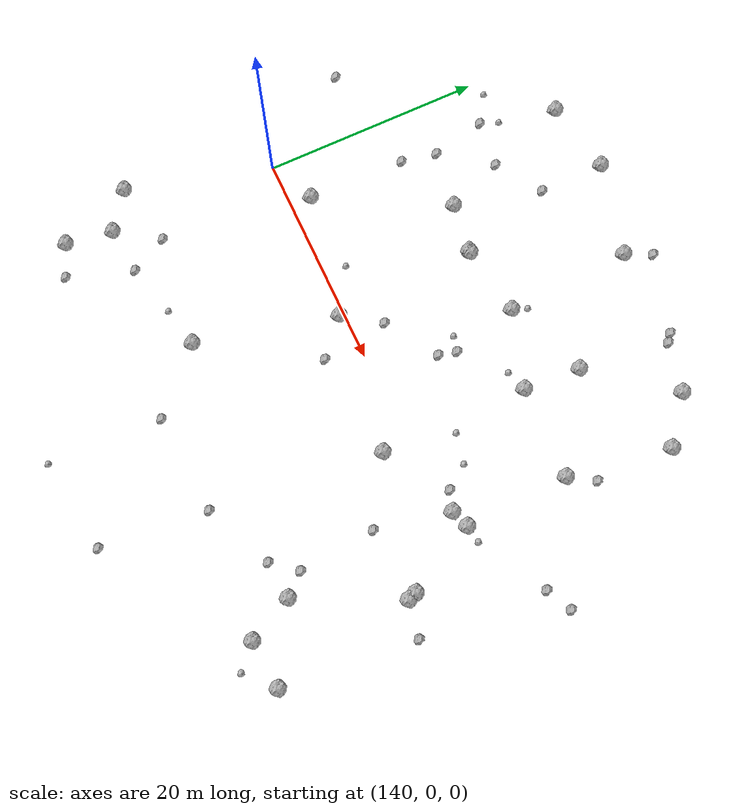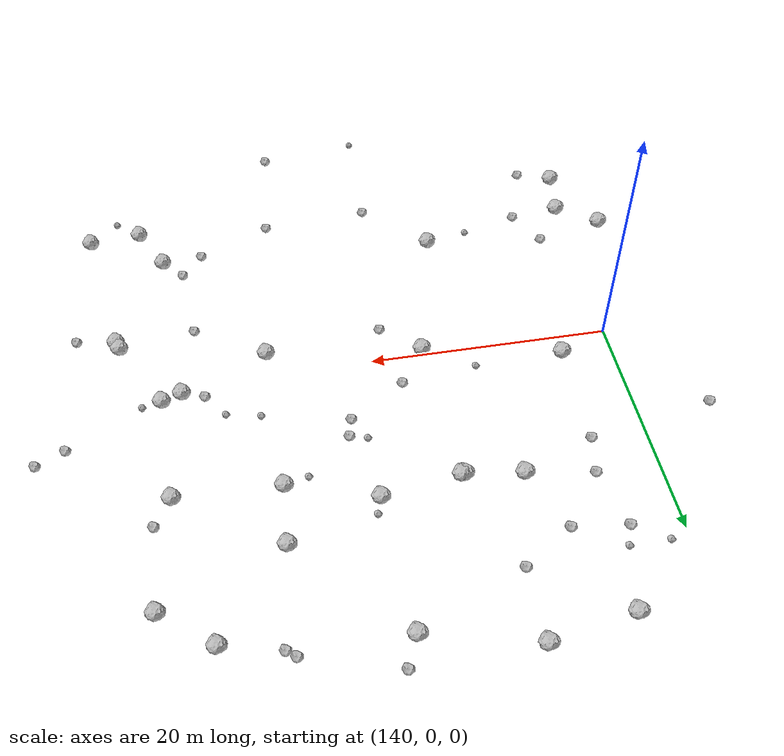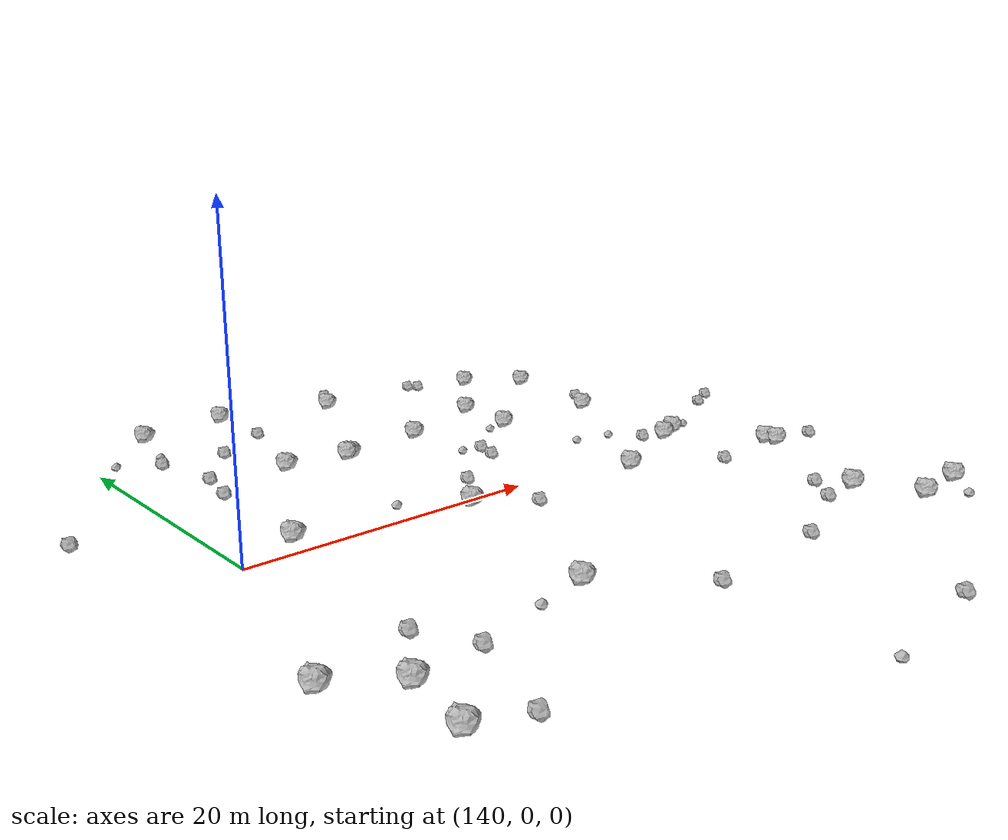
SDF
<sdf version="1.6">
 <world name="default">
  <include><uri>model://sun</uri></include>
  <model name="rock1_4_1">
   <include><uri>model://rock1</uri><pose>174.7498786225504 23.683647152396965 0.5 0 0 0</pose></include>
  </model>
  <model name="rock1_4_2">
   <include><uri>model://rock1</uri><pose>176.558944416776 -14.662073821627196 0.5 0 0 0</pose></include>
  </model>
  <model name="rock1_4_3">
   <include><uri>model://rock1</uri><pose>139.15578128217462 -20.020096203736635 0.5 0 0 0</pose></include>
  </model>
  <model name="rock1_4_4">
   <include><uri>model://rock1</uri><pose>168.61053467037428 -2.222341103047949 0.5 0 0 0</pose></include>
  </model>
  <model name="rock1_4_5">
   <include><uri>model://rock1</uri><pose>178.52827402131615 -18.74316183490282 0.5 0 0 0</pose></include>
  </model>
  <model name="rock1_4_6">
   <include><uri>model://rock1</uri><pose>155.03463860153465 12.655294101004415 0.5 0 0 0</pose></include>
  </model>
  <model name="rock1_4_7">
   <include><uri>model://rock1</uri><pose>182.90760982581673 -18.36356553927983 0.5 0 0 0</pose></include>
  </model>
  <model name="rock1_4_8">
   <include><uri>model://rock1</uri><pose>177.42680748121543 1.5114158730515292 0.5 0 0 0</pose></include>
  </model>
  <model name="rock1_4_9">
   <include><uri>model://rock1</uri><pose>180.91247368006327 -5.606362266100486 0.5 0 0 0</pose></include>
  </model>
  <model name="rock1_4_10">
   <include><uri>model://rock1</uri><pose>152.5739978903482 27.348476722489444 0.5 0 0 0</pose></include>
  </model>
  <model name="rock1_4_11">
   <include><uri>model://rock1</uri><pose>155.71980209124547 -0.48685224335727284 0.5 0 0 0</pose></include>
  </model>
  <model name="rock1_4_12">
   <include><uri>model://rock1</uri><pose>175.7854580243101 0.9259347351446792 0.5 0 0 0</pose></include>
  </model>
  <model name="rock1_4_13">
   <include><uri>model://rock1</uri><pose>180.64015663589427 -4.843977699121741 0.5 0 0 0</pose></include>
  </model>
  <model name="rock1_4_14">
   <include><uri>model://rock1</uri><pose>168.69614414617055 11.330524959026633 0.5 0 0 0</pose></include>
  </model>
  <model name="rock1_4_15">
   <include><uri>model://rock1</uri><pose>178.74412879529035 20.4811483200401 0.5 0 0 0</pose></include>
  </model>
  <model name="rock1_4_16">
   <include><uri>model://rock1</uri><pose>145.81399733835585 26.141665195360872 0.5 0 0 0</pose></include>
  </model>
  <model name="rock1_4_17">
   <include><uri>model://rock1</uri><pose>150.490838216475 13.34545719775997 0.5 0 0 0</pose></include>
  </model>
  <model name="rock1_4_18">
   <include><uri>model://rock1</uri><pose>161.6708618945341 13.637845428157561 0.5 0 0 0</pose></include>
  </model>
  <model name="rock1_4_19">
   <include><uri>model://rock1</uri><pose>155.27825185809132 12.663035348971086 0.5 0 0 0</pose></include>
  </model>
  <model name="rock1_4_20">
   <include><uri>model://rock1</uri><pose>169.08506376600215 16.542015252397732 0.5 0 0 0</pose></include>
  </model>
  <model name="rock1_4_21">
   <include><uri>model://rock1</uri><pose>136.4416690897016 -13.279968835411779 0.5 0 0 0</pose></include>
  </model>
  <model name="rock1_4_22">
   <include><uri>model://rock1</uri><pose>139.82383860378042 -15.739272106299484 0.5 0 0 0</pose></include>
  </model>
  <model name="rock1_4_23">
   <include><uri>model://rock1</uri><pose>177.157004908451 11.043710252783598 0.5 0 0 0</pose></include>
  </model>
  <model name="rock1_4_24">
   <include><uri>model://rock1</uri><pose>161.18264464575952 25.13662590991496 0.5 0 0 0</pose></include>
  </model>
  <model name="rock1_4_25">
   <include><uri>model://rock1</uri><pose>144.27902606241943 1.8943545747356723 0.5 0 0 0</pose></include>
  </model>
  <model name="rock1_4_26">
   <include><uri>model://rock1</uri><pose>152.63340481119388 -13.306842120826413 0.5 0 0 0</pose></include>
  </model>
  <model name="rock2_4_0">
   <include><uri>model://rock2</uri><pose>166.93943010587762 -17.741813063309095 0.3 0 0 0</pose></include>
  </model>
  <model name="rock2_4_1">
   <include><uri>model://rock2</uri><pose>173.95832160097592 1.5693242902660138 0.3 0 0 0</pose></include>
  </model>
  <model name="rock2_4_2">
   <include><uri>model://rock2</uri><pose>185.01118835900678 5.187372300260407 0.3 0 0 0</pose></include>
  </model>
  <model name="rock2_4_3">
   <include><uri>model://rock2</uri><pose>145.09744711959124 14.206921267323366 0.3 0 0 0</pose></include>
  </model>
  <model name="rock2_4_4">
   <include><uri>model://rock2</uri><pose>174.88998069499524 -12.79316283727574 0.3 0 0 0</pose></include>
  </model>
  <model name="rock2_4_5">
   <include><uri>model://rock2</uri><pose>187.31233362146142 6.29870332999608 0.3 0 0 0</pose></include>
  </model>
  <model name="rock2_4_6">
   <include><uri>model://rock2</uri><pose>144.0651317413645 -15.300852108260067 0.3 0 0 0</pose></include>
  </model>
  <model name="rock2_4_7">
   <include><uri>model://rock2</uri><pose>170.20410808754525 24.811384463709395 0.3 0 0 0</pose></include>
  </model>
  <model name="rock2_4_8">
   <include><uri>model://rock2</uri><pose>184.16625919655775 -6.199282614193592 0.3 0 0 0</pose></include>
  </model>
  <model name="rock2_4_9">
   <include><uri>model://rock2</uri><pose>148.40211808919378 18.646527440674838 0.3 0 0 0</pose></include>
  </model>
  <model name="rock2_4_10">
   <include><uri>model://rock2</uri><pose>174.3331359952359 -5.809047034529577 0.3 0 0 0</pose></include>
  </model>
  <model name="rock2_4_11">
   <include><uri>model://rock2</uri><pose>144.46479595194262 10.953946733771062 0.3 0 0 0</pose></include>
  </model>
  <model name="rock2_4_12">
   <include><uri>model://rock2</uri><pose>163.09654094589507 7.539045274017774 0.3 0 0 0</pose></include>
  </model>
  <model name="rock2_4_13">
   <include><uri>model://rock2</uri><pose>178.57102897215762 13.379327020620345 0.3 0 0 0</pose></include>
  </model>
  <model name="rock2_4_14">
   <include><uri>model://rock2</uri><pose>162.29485824834407 27.572481112096824 0.3 0 0 0</pose></include>
  </model>
  <model name="rock2_4_15">
   <include><uri>model://rock2</uri><pose>157.80310291277118 -18.378044983251904 0.3 0 0 0</pose></include>
  </model>
  <model name="rock2_4_16">
   <include><uri>model://rock2</uri><pose>142.30683794897553 -11.908434361864657 0.3 0 0 0</pose></include>
  </model>
  <model name="rock2_4_17">
   <include><uri>model://rock2</uri><pose>144.02155042208076 19.205938008428078 0.3 0 0 0</pose></include>
  </model>
  <model name="rock2_4_18">
   <include><uri>model://rock2</uri><pose>158.83531447272156 -3.2831701191680693 0.3 0 0 0</pose></include>
  </model>
  <model name="rock2_4_19">
   <include><uri>model://rock2</uri><pose>162.69036689402503 5.907300147849874 0.3 0 0 0</pose></include>
  </model>
  <model name="rock2_4_20">
   <include><uri>model://rock2</uri><pose>165.96907117228517 -27.485983088363717 0.3 0 0 0</pose></include>
  </model>
  <model name="rock2_4_21">
   <include><uri>model://rock2</uri><pose>157.99679154197017 2.8785458199031595 0.3 0 0 0</pose></include>
  </model>
  <model name="rock2_4_22">
   <include><uri>model://rock2</uri><pose>173.09563285884016 -14.96281413817618 0.3 0 0 0</pose></include>
  </model>
  <model name="rock2_4_23">
   <include><uri>model://rock2</uri><pose>169.5002939101933 25.39311795544984 0.3 0 0 0</pose></include>
  </model>
  <model name="rock2_4_24">
   <include><uri>model://rock2</uri><pose>142.07216900072007 -21.190705599872146 0.3 0 0 0</pose></include>
  </model>
  <model name="rock2_4_25">
   <include><uri>model://rock2</uri><pose>134.01273141450727 9.047267572392698 0.3 0 0 0</pose></include>
  </model>
  <model name="rock2_4_26">
   <include><uri>model://rock2</uri><pose>152.5224997508119 21.356454925804115 0.3 0 0 0</pose></include>
  </model>
  <model name="rock3_4_0">
   <include><uri>model://rock3</uri><pose>157.39116185633262 -28.760569339379856 0.2 0 0 0</pose></include>
  </model>
  <model name="rock3_4_1">
   <include><uri>model://rock3</uri><pose>169.66647852203957 4.232233647263293 0.2 0 0 0</pose></include>
  </model>
  <model name="rock3_4_2">
   <include><uri>model://rock3</uri><pose>148.88962131919428 -14.101753583228918 0.2 0 0 0</pose></include>
  </model>
  <model name="rock3_4_3">
   <include><uri>model://rock3</uri><pose>151.62253169784643 2.006641649988076 0.2 0 0 0</pose></include>
  </model>
  <model name="rock3_4_4">
   <include><uri>model://rock3</uri><pose>141.4437506779557 20.84982976715908 0.2 0 0 0</pose></include>
  </model>
  <model name="rock3_4_5">
   <include><uri>model://rock3</uri><pose>144.6273423621023 20.843070655727757 0.2 0 0 0</pose></include>
  </model>
  <model name="rock3_4_6">
   <include><uri>model://rock3</uri><pose>172.42656260737522 3.6236099371343187 0.2 0 0 0</pose></include>
  </model>
  <model name="rock3_4_7">
   <include><uri>model://rock3</uri><pose>180.4738154612261 -20.65660314044651 0.2 0 0 0</pose></include>
  </model>
  <model name="rock3_4_8">
   <include><uri>model://rock3</uri><pose>178.97609326530028 1.7832490667495549 0.2 0 0 0</pose></include>
  </model>
  <model name="rock3_4_9">
   <include><uri>model://rock3</uri><pose>161.66968069354004 7.883435923070948 0.2 0 0 0</pose></include>
  </model>
  <model name="rock3_4_10">
   <include><uri>model://rock3</uri><pose>162.1115954083125 15.001514464193683 0.2 0 0 0</pose></include>
  </model>
  <model name="rock3_4_11">
   <include><uri>model://rock3</uri><pose>166.71345884814383 10.763533197827819 0.2 0 0 0</pose></include>
  </model>
 </world>
</sdf>
